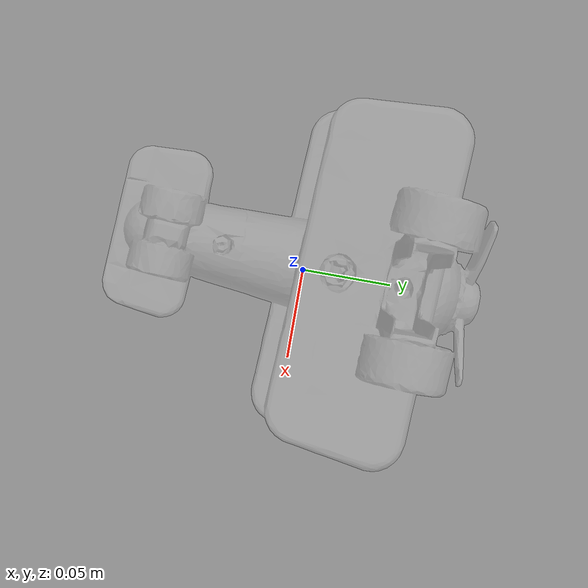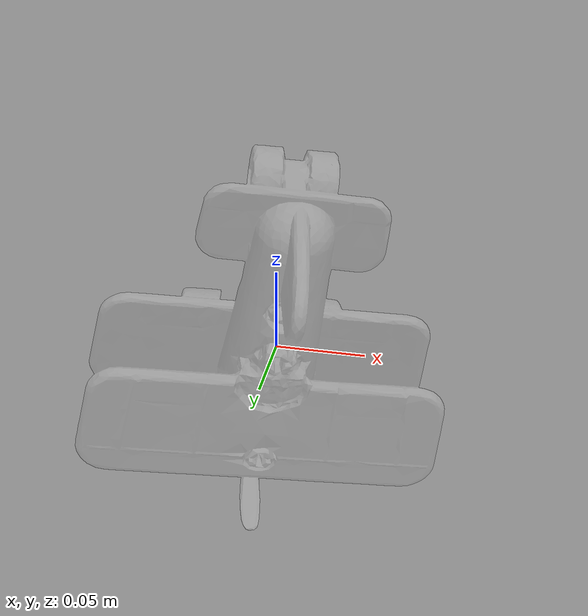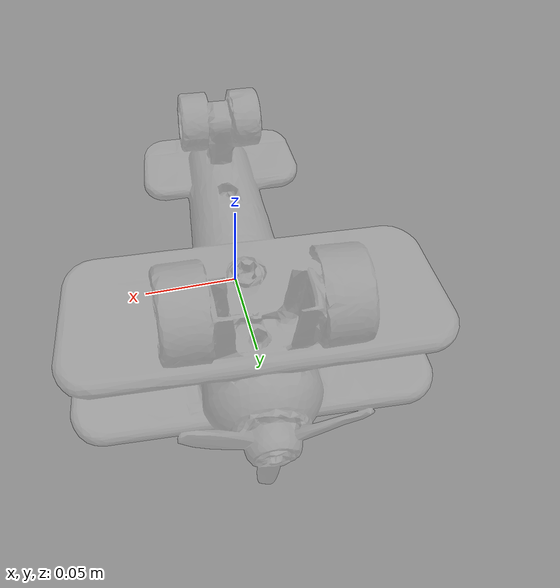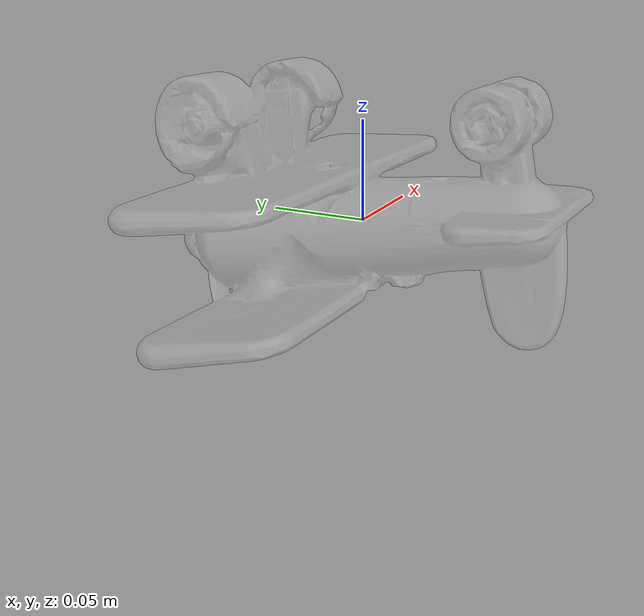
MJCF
<mujoco model="a_toy_airplane-visual">
  <asset>
    <mesh name="a_toy_airplane_mesh" file="$ADDRESS/google_16k/nontextured.stl" scale="0.8 0.8 0.8"/>
  </asset>
  <worldbody>
    <body>
      <body name="object">
        <geom name="a_toy_airplane" pos="0 0 0" mesh="a_toy_airplane_mesh" type="mesh" rgba="0.8 0.8 0.8 0.3" conaffinity="0" contype="0" mass="0.0015645812091364011" friction="0.95 0.3 0.1" group="1" condim="4"/>
      </body>
      <site rgba="0 0 0 0" size="0.005" pos="0 0 -0.045" name="bottom_site"/>
      <site rgba="0 0 0 0" size="0.005" pos="0 0 0.03" name="top_site"/>
      <site rgba="0 0 0 0" size="0.005" pos="0.096 0.096 0" name="horizontal_radius_site"/>
    </body>
  </worldbody>
</mujoco>
